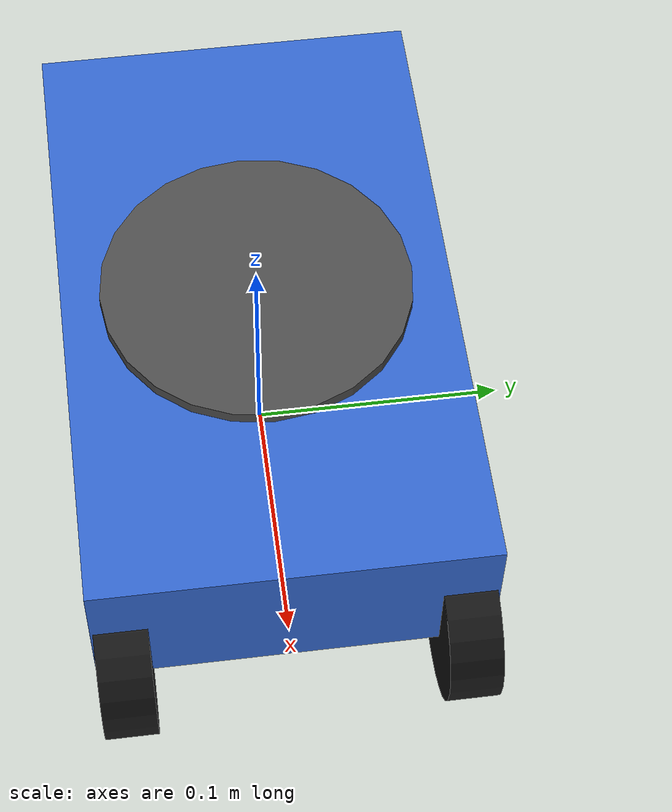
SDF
<?xml version="1.0" ?>
<sdf version="1.9">
  <model name="driftbot">
    <self_collide>false</self_collide>

    <!-- ── Chassis (origin at model frame, center z = 0.06 m) ─────────────── -->
    <link name="chassis">
      <pose>0 0 0.06 0 0 0</pose>
      <inertial>
        <mass>1.5</mass>
        <inertia>
          <ixx>0.00326</ixx>
          <ixy>0</ixy>
          <ixz>0</ixz>
          <iyy>0.00826</iyy>
          <iyz>0</iyz>
          <izz>0.01063</izz>
        </inertia>
      </inertial>
      <collision name="collision">
        <geometry>
          <box>
            <size>0.25 0.15 0.06</size>
          </box>
        </geometry>
      </collision>
      <visual name="visual">
        <geometry>
          <box>
            <size>0.25 0.15 0.06</size>
          </box>
        </geometry>
        <material>
          <ambient>0.2 0.4 0.8 1</ambient>
          <diffuse>0.2 0.4 0.8 1</diffuse>
          <specular>0.1 0.1 0.1 1</specular>
        </material>
      </visual>

      <!-- MPU6050 IMU — published as imu_link (static identity from base_link) -->
      <sensor name="imu" type="imu">
        <always_on>1</always_on>
        <update_rate>10</update_rate>
        <topic>/imu/data</topic>
        <gz_frame_id>imu_link</gz_frame_id>
      </sensor>

      <!-- Forward-facing camera at the chassis front -->
      <sensor name="front_camera" type="camera">
        <always_on>1</always_on>
        <update_rate>30</update_rate>
        <topic>/camera/image_raw</topic>
        <gz_frame_id>camera_link</gz_frame_id>
        <pose>0.13 0 0.02 0 0 0</pose>
        <camera>
          <horizontal_fov>1.047</horizontal_fov>
          <image>
            <width>1280</width>
            <height>720</height>
            <format>R8G8B8</format>
          </image>
          <clip>
            <near>0.02</near>
            <far>100</far>
          </clip>
        </camera>
      </sensor>
    </link>

    <!-- ── Front steering knuckles (kingpins at x=±0.1175... y=±0.064) ────── -->
    <link name="front_left_steering_link">
      <pose>0.1175 0.064 0.032 0 0 0</pose>
      <inertial>
        <mass>0.05</mass>
        <inertia>
          <ixx>0.00001</ixx>
          <ixy>0</ixy>
          <ixz>0</ixz>
          <iyy>0.00001</iyy>
          <iyz>0</iyz>
          <izz>0.00001</izz>
        </inertia>
      </inertial>
    </link>
    <link name="front_right_steering_link">
      <pose>0.1175 -0.064 0.032 0 0 0</pose>
      <inertial>
        <mass>0.05</mass>
        <inertia>
          <ixx>0.00001</ixx>
          <ixy>0</ixy>
          <ixz>0</ixz>
          <iyy>0.00001</iyy>
          <iyz>0</iyz>
          <izz>0.00001</izz>
        </inertia>
      </inertial>
    </link>

    <joint name="front_left_steering_joint" type="revolute">
      <parent>chassis</parent>
      <child>front_left_steering_link</child>
      <axis>
        <xyz>0 0 1</xyz>
        <limit>
          <lower>-0.6</lower>
          <upper>0.6</upper>
          <effort>25</effort>
          <velocity>5</velocity>
        </limit>
      </axis>
    </joint>
    <joint name="front_right_steering_joint" type="revolute">
      <parent>chassis</parent>
      <child>front_right_steering_link</child>
      <axis>
        <xyz>0 0 1</xyz>
        <limit>
          <lower>-0.6</lower>
          <upper>0.6</upper>
          <effort>25</effort>
          <velocity>5</velocity>
        </limit>
      </axis>
    </joint>

    <!-- ── Wheels (cylinder axis rolled to Y, same convention as the
         gz ackermann_steering.sdf demo) ───────────────────────────────────── -->
    <link name="front_left_wheel">
      <pose>0.1175 0.064 0.032 -1.5707 0 0</pose>
      <inertial>
        <mass>0.05</mass>
        <inertia>
          <ixx>0.0000131</ixx>
          <ixy>0</ixy>
          <ixz>0</ixz>
          <iyy>0.0000131</iyy>
          <iyz>0</iyz>
          <izz>0.0000256</izz>
        </inertia>
      </inertial>
      <collision name="collision">
        <geometry>
          <cylinder>
            <radius>0.032</radius>
            <length>0.02</length>
          </cylinder>
        </geometry>
        <surface>
          <friction>
            <ode>
              <mu>1.0</mu>
              <mu2>1.0</mu2>
            </ode>
          </friction>
        </surface>
      </collision>
      <visual name="visual">
        <geometry>
          <cylinder>
            <radius>0.032</radius>
            <length>0.02</length>
          </cylinder>
        </geometry>
        <material>
          <ambient>0.1 0.1 0.1 1</ambient>
          <diffuse>0.1 0.1 0.1 1</diffuse>
        </material>
      </visual>
    </link>
    <link name="front_right_wheel">
      <pose>0.1175 -0.064 0.032 -1.5707 0 0</pose>
      <inertial>
        <mass>0.05</mass>
        <inertia>
          <ixx>0.0000131</ixx>
          <ixy>0</ixy>
          <ixz>0</ixz>
          <iyy>0.0000131</iyy>
          <iyz>0</iyz>
          <izz>0.0000256</izz>
        </inertia>
      </inertial>
      <collision name="collision">
        <geometry>
          <cylinder>
            <radius>0.032</radius>
            <length>0.02</length>
          </cylinder>
        </geometry>
        <surface>
          <friction>
            <ode>
              <mu>1.0</mu>
              <mu2>1.0</mu2>
            </ode>
          </friction>
        </surface>
      </collision>
      <visual name="visual">
        <geometry>
          <cylinder>
            <radius>0.032</radius>
            <length>0.02</length>
          </cylinder>
        </geometry>
        <material>
          <ambient>0.1 0.1 0.1 1</ambient>
          <diffuse>0.1 0.1 0.1 1</diffuse>
        </material>
      </visual>
    </link>
    <link name="rear_left_wheel">
      <pose>-0.1175 0.064 0.032 -1.5707 0 0</pose>
      <inertial>
        <mass>0.05</mass>
        <inertia>
          <ixx>0.0000131</ixx>
          <ixy>0</ixy>
          <ixz>0</ixz>
          <iyy>0.0000131</iyy>
          <iyz>0</iyz>
          <izz>0.0000256</izz>
        </inertia>
      </inertial>
      <collision name="collision">
        <geometry>
          <cylinder>
            <radius>0.032</radius>
            <length>0.02</length>
          </cylinder>
        </geometry>
        <surface>
          <friction>
            <ode>
              <mu>1.0</mu>
              <mu2>1.0</mu2>
            </ode>
          </friction>
        </surface>
      </collision>
      <visual name="visual">
        <geometry>
          <cylinder>
            <radius>0.032</radius>
            <length>0.02</length>
          </cylinder>
        </geometry>
        <material>
          <ambient>0.1 0.1 0.1 1</ambient>
          <diffuse>0.1 0.1 0.1 1</diffuse>
        </material>
      </visual>
    </link>
    <link name="rear_right_wheel">
      <pose>-0.1175 -0.064 0.032 -1.5707 0 0</pose>
      <inertial>
        <mass>0.05</mass>
        <inertia>
          <ixx>0.0000131</ixx>
          <ixy>0</ixy>
          <ixz>0</ixz>
          <iyy>0.0000131</iyy>
          <iyz>0</iyz>
          <izz>0.0000256</izz>
        </inertia>
      </inertial>
      <collision name="collision">
        <geometry>
          <cylinder>
            <radius>0.032</radius>
            <length>0.02</length>
          </cylinder>
        </geometry>
        <surface>
          <friction>
            <ode>
              <mu>1.0</mu>
              <mu2>1.0</mu2>
            </ode>
          </friction>
        </surface>
      </collision>
      <visual name="visual">
        <geometry>
          <cylinder>
            <radius>0.032</radius>
            <length>0.02</length>
          </cylinder>
        </geometry>
        <material>
          <ambient>0.1 0.1 0.1 1</ambient>
          <diffuse>0.1 0.1 0.1 1</diffuse>
        </material>
      </visual>
    </link>

    <!-- Spin joints: axis z in each wheel's rolled frame (= model Y axle) -->
    <joint name="front_left_wheel_joint" type="revolute">
      <parent>front_left_steering_link</parent>
      <child>front_left_wheel</child>
      <axis>
        <xyz>0 0 1</xyz>
        <limit>
          <lower>-1e16</lower>
          <upper>1e16</upper>
        </limit>
      </axis>
    </joint>
    <joint name="front_right_wheel_joint" type="revolute">
      <parent>front_right_steering_link</parent>
      <child>front_right_wheel</child>
      <axis>
        <xyz>0 0 1</xyz>
        <limit>
          <lower>-1e16</lower>
          <upper>1e16</upper>
        </limit>
      </axis>
    </joint>
    <joint name="rear_left_wheel_joint" type="revolute">
      <parent>chassis</parent>
      <child>rear_left_wheel</child>
      <axis>
        <xyz>0 0 1</xyz>
        <limit>
          <lower>-1e16</lower>
          <upper>1e16</upper>
        </limit>
      </axis>
    </joint>
    <joint name="rear_right_wheel_joint" type="revolute">
      <parent>chassis</parent>
      <child>rear_right_wheel</child>
      <axis>
        <xyz>0 0 1</xyz>
        <limit>
          <lower>-1e16</lower>
          <upper>1e16</upper>
        </limit>
      </axis>
    </joint>

    <!-- ── Scan head (rotating ToF plate, z = 0.09 = chassis top) ─────────── -->
    <link name="scan_head">
      <pose>0 0 0.09 0 0 0</pose>
      <inertial>
        <mass>0.05</mass>
        <inertia>
          <ixx>0.00001</ixx>
          <ixy>0</ixy>
          <ixz>0</ixz>
          <iyy>0.00001</iyy>
          <iyz>0</iyz>
          <izz>0.00001</izz>
        </inertia>
      </inertial>
      <visual name="visual">
        <geometry>
          <cylinder>
            <radius>0.06</radius>
            <length>0.01</length>
          </cylinder>
        </geometry>
        <material>
          <ambient>0.3 0.3 0.3 1</ambient>
          <diffuse>0.3 0.3 0.3 1</diffuse>
        </material>
      </visual>

      <!-- ToF 2: forward (mount angle 0 deg) -->
      <sensor name="tof_2" type="gpu_lidar">
        <pose>0.05 0 0 0 0 0</pose>
        <always_on>1</always_on>
        <update_rate>10</update_rate>
        <topic>/tof/sensor_2</topic>
        <gz_frame_id>tof_2</gz_frame_id>
        <lidar>
          <scan>
            <horizontal>
              <samples>1</samples>
              <resolution>1</resolution>
              <min_angle>0</min_angle>
              <max_angle>0</max_angle>
            </horizontal>
            <vertical>
              <samples>1</samples>
              <resolution>1</resolution>
              <min_angle>-0.005</min_angle>
              <max_angle>0.005</max_angle>
            </vertical>
          </scan>
          <range>
            <min>0.04</min>
            <max>4.0</max>
            <resolution>0.01</resolution>
          </range>
        </lidar>
      </sensor>

      <!-- ToF 1: left-rear (mount angle 115 deg CCW) -->
      <sensor name="tof_1" type="gpu_lidar">
        <pose>0.05 0 0 0 0 2.007128640</pose>
        <always_on>1</always_on>
        <update_rate>10</update_rate>
        <topic>/tof/sensor_1</topic>
        <gz_frame_id>tof_1</gz_frame_id>
        <lidar>
          <scan>
            <horizontal>
              <samples>1</samples>
              <resolution>1</resolution>
              <min_angle>0</min_angle>
              <max_angle>0</max_angle>
            </horizontal>
            <vertical>
              <samples>1</samples>
              <resolution>1</resolution>
              <min_angle>-0.005</min_angle>
              <max_angle>0.005</max_angle>
            </vertical>
          </scan>
          <range>
            <min>0.04</min>
            <max>4.0</max>
            <resolution>0.01</resolution>
          </range>
        </lidar>
      </sensor>

      <!-- ToF 0: backward (mount angle 180 deg) -->
      <sensor name="tof_0" type="gpu_lidar">
        <pose>0.05 0 0 0 0 3.141592654</pose>
        <always_on>1</always_on>
        <update_rate>10</update_rate>
        <topic>/tof/sensor_0</topic>
        <gz_frame_id>tof_0</gz_frame_id>
        <lidar>
          <scan>
            <horizontal>
              <samples>1</samples>
              <resolution>1</resolution>
              <min_angle>0</min_angle>
              <max_angle>0</max_angle>
            </horizontal>
            <vertical>
              <samples>1</samples>
              <resolution>1</resolution>
              <min_angle>-0.005</min_angle>
              <max_angle>0.005</max_angle>
            </vertical>
          </scan>
          <range>
            <min>0.04</min>
            <max>4.0</max>
            <resolution>0.01</resolution>
          </range>
        </lidar>
      </sensor>
    </link>

    <!-- Scan joint: zero = servo at 96 deg = robot forward.
         Real servo sweeps 96 ± 60 deg; joint limits ±60 deg. -->
    <joint name="scan_joint" type="revolute">
      <parent>chassis</parent>
      <child>scan_head</child>
      <axis>
        <xyz>0 0 1</xyz>
        <limit>
          <lower>-1.05</lower>
          <upper>1.05</upper>
          <effort>10</effort>
          <velocity>10</velocity>
        </limit>
      </axis>
    </joint>

    <!-- ── Systems ─────────────────────────────────────────────────────────── -->
    <plugin
      filename="gz-sim-ackermann-steering-system"
      name="gz::sim::systems::AckermannSteering">
      <left_joint>front_left_wheel_joint</left_joint>
      <left_joint>rear_left_wheel_joint</left_joint>
      <right_joint>front_right_wheel_joint</right_joint>
      <right_joint>rear_right_wheel_joint</right_joint>
      <left_steering_joint>front_left_steering_joint</left_steering_joint>
      <right_steering_joint>front_right_steering_joint</right_steering_joint>
      <kingpin_width>0.128</kingpin_width>
      <steering_limit>0.6</steering_limit>
      <wheel_base>0.235</wheel_base>
      <wheel_separation>0.128</wheel_separation>
      <wheel_radius>0.032</wheel_radius>
      <min_velocity>-0.5</min_velocity>
      <max_velocity>0.5</max_velocity>
      <min_acceleration>-1.0</min_acceleration>
      <max_acceleration>1.0</max_acceleration>
    </plugin>

    <plugin
      filename="gz-sim-joint-position-controller-system"
      name="gz::sim::systems::JointPositionController">
      <joint_name>scan_joint</joint_name>
      <topic>/scan_joint/cmd_pos</topic>
      <use_velocity_commands>true</use_velocity_commands>
      <cmd_max>3.0</cmd_max>
      <cmd_min>-3.0</cmd_min>
    </plugin>
  </model>
</sdf>
